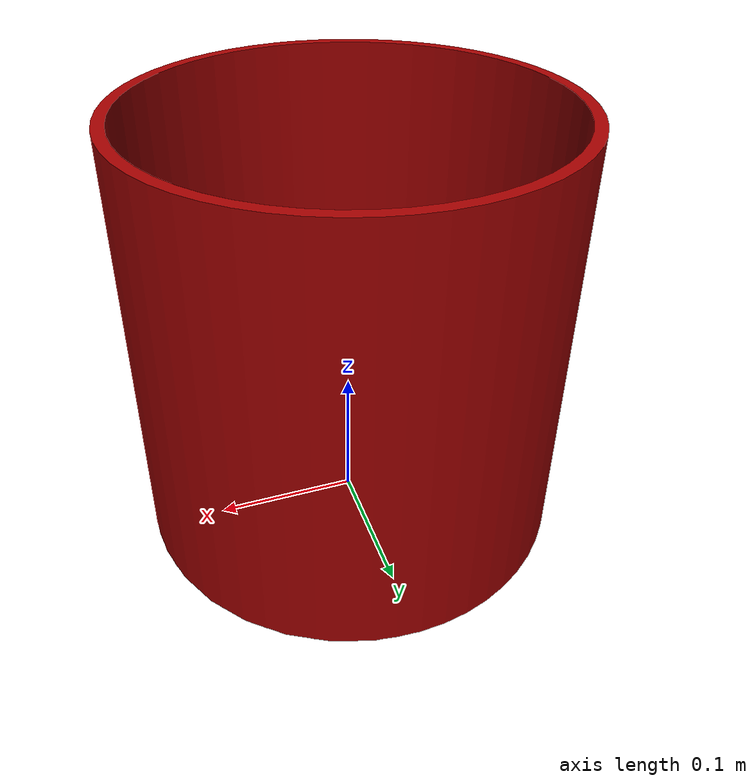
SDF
<?xml version='1.0'?>
<sdf version='1.7'>
  <model name='drop_zone'>
    <link name='link'>
      <self_collide>0</self_collide>
      <enable_wind>0</enable_wind>
      <kinematic>0</kinematic>
      <pose>0 0 0 0 -0 0</pose>
      <gravity>1</gravity>
      <visual name='visual'>
        <geometry>
            <mesh>
                <uri>model://drop_zone/meshes/drop_zone.dae</uri>
                <scale>1 1 1</scale>
            </mesh>
        </geometry>
        <material>
          <script>
            <name>Gazebo/Grey</name>
            <uri>file://media/materials/scripts/gazebo.material</uri>
          </script>
          <shader type='pixel'>
            <normal_map>__default__</normal_map>
          </shader>
          <ambient>0.643 0 0 1</ambient>
          <diffuse>0.643 0 0 1</diffuse>
          <specular>0.643 0 0 1</specular>
          <emissive>0.643 0 0 1</emissive>
        </material>
        <pose>0 0 0 0 -0 0</pose>
        <transparency>0</transparency>
        <cast_shadows>1</cast_shadows>
      </visual>
      <collision name='collision'>
        <pose>0 0 0 0 -0 0</pose>
        <geometry>
            <mesh>
                <uri>model://drop_zone/meshes/drop_zone.dae</uri>
                <scale>1 1 1</scale>
            </mesh>
        </geometry>
      </collision>
    </link>
    <static>0</static>
    <allow_auto_disable>1</allow_auto_disable>
  </model>
</sdf>
